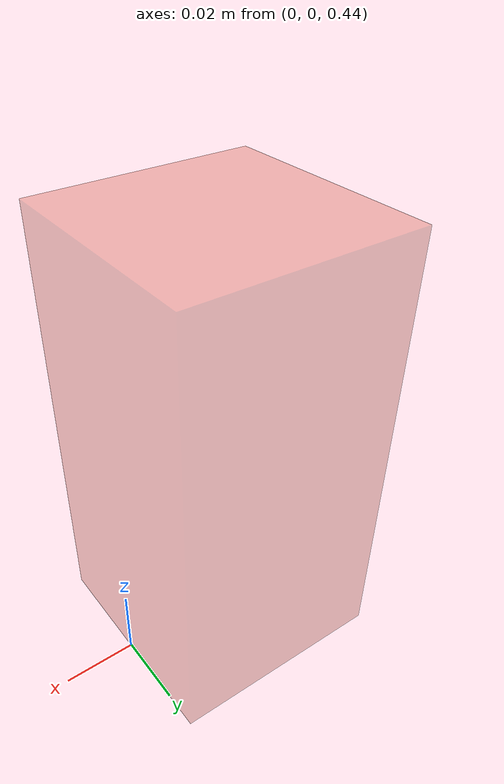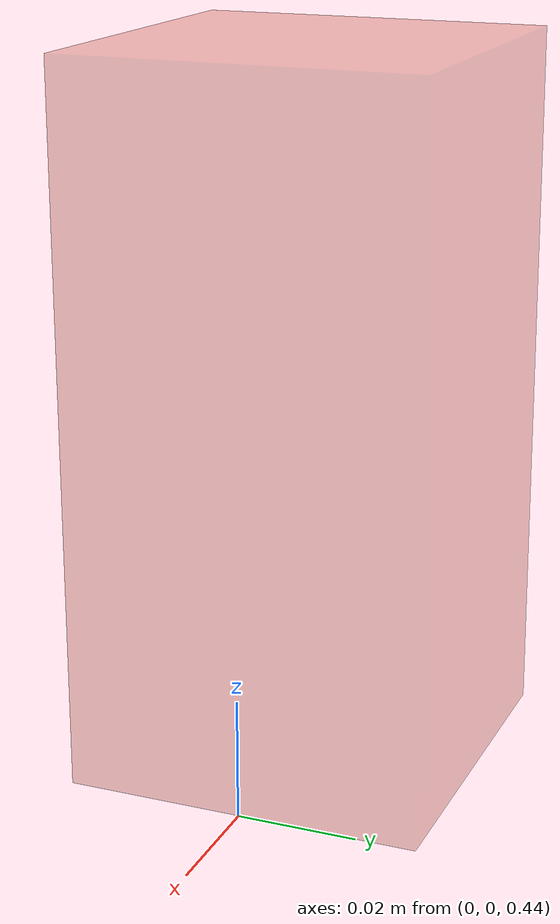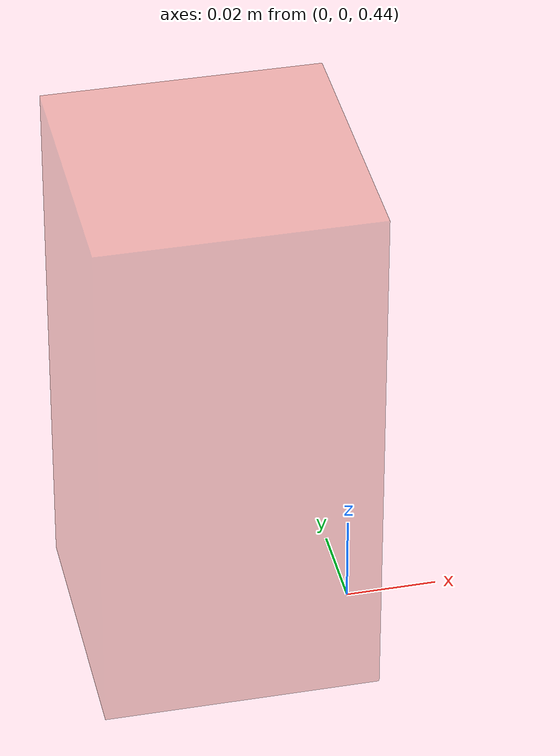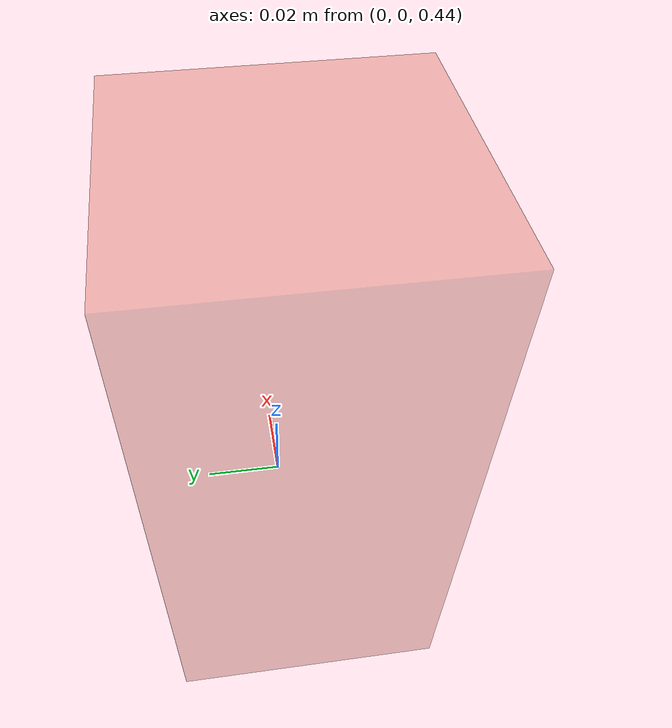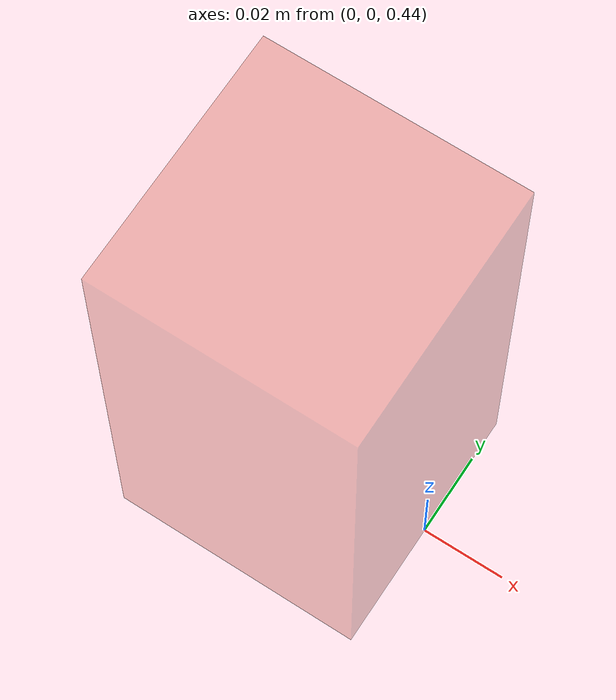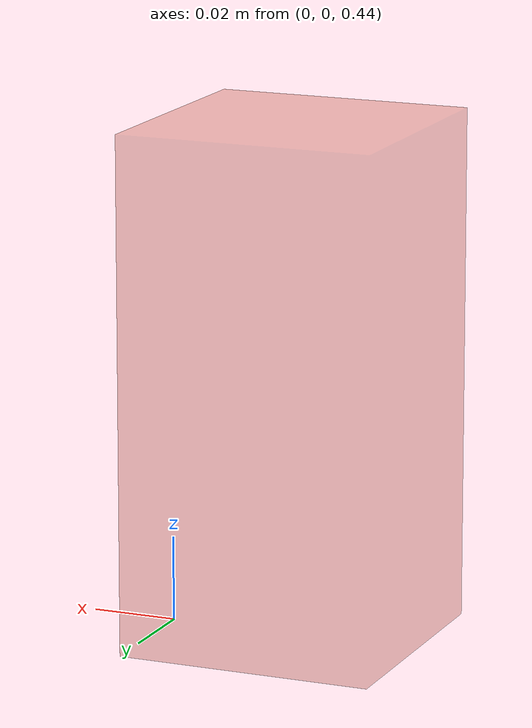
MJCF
<mujoco model="anchor-box">
  <worldbody>
    <body name="anchor_box" pos="-0.03000000000000025 -3.942657917179662e-16 0.5">
      <geom name="fixedbox1" type="box" mass="1" size="0.0300 0.0300 0.0600" contype="0" conaffinity="0" rgba=".8 .2 .1 0.3" friction="1 0.005 0.0001"/>
    </body>
  </worldbody>
  <equality>
     <weld body1='anchor_box' body2='r_joint51_body' solref='0.004 1' relpose='0.03 0 0 1 0 0 0'/>
     <connect body1='r_link1_body' body2='r_link2_body' active='true' solref='0.004 1' anchor='-0.06283185307179587 0 0'/>
     <connect body1='r_link2_body' body2='r_link3_body' active='true' solref='0.004 1' anchor='-0.06283185307179587 0 0'/>
     <connect body1='r_link3_body' body2='r_link4_body' active='true' solref='0.004 1' anchor='-0.06283185307179587 0 0'/>
     <connect body1='r_link4_body' body2='r_link5_body' active='true' solref='0.004 1' anchor='-0.06283185307179587 0 0'/>
     <connect body1='r_link5_body' body2='r_link6_body' active='true' solref='0.004 1' anchor='-0.06283185307179587 0 0'/>
     <connect body1='r_link6_body' body2='r_link7_body' active='true' solref='0.004 1' anchor='-0.06283185307179587 0 0'/>
     <connect body1='r_link7_body' body2='r_link8_body' active='true' solref='0.004 1' anchor='-0.06283185307179587 0 0'/>
     <connect body1='r_link8_body' body2='r_link9_body' active='true' solref='0.004 1' anchor='-0.06283185307179587 0 0'/>
     <connect body1='r_link9_body' body2='r_link10_body' active='true' solref='0.004 1' anchor='-0.06283185307179587 0 0'/>
     <connect body1='r_link10_body' body2='r_link11_body' active='true' solref='0.004 1' anchor='-0.06283185307179587 0 0'/>
     <connect body1='r_link11_body' body2='r_link12_body' active='true' solref='0.004 1' anchor='-0.06283185307179587 0 0'/>
     <connect body1='r_link12_body' body2='r_link13_body' active='true' solref='0.004 1' anchor='-0.06283185307179587 0 0'/>
     <connect body1='r_link13_body' body2='r_link14_body' active='true' solref='0.004 1' anchor='-0.06283185307179587 0 0'/>
     <connect body1='r_link14_body' body2='r_link15_body' active='true' solref='0.004 1' anchor='-0.06283185307179587 0 0'/>
     <connect body1='r_link15_body' body2='r_link16_body' active='true' solref='0.004 1' anchor='-0.06283185307179587 0 0'/>
     <connect body1='r_link16_body' body2='r_link17_body' active='true' solref='0.004 1' anchor='-0.06283185307179587 0 0'/>
     <connect body1='r_link17_body' body2='r_link18_body' active='true' solref='0.004 1' anchor='-0.06283185307179587 0 0'/>
     <connect body1='r_link18_body' body2='r_link19_body' active='true' solref='0.004 1' anchor='-0.06283185307179587 0 0'/>
     <connect body1='r_link19_body' body2='r_link20_body' active='true' solref='0.004 1' anchor='-0.06283185307179587 0 0'/>
     <connect body1='r_link20_body' body2='r_link21_body' active='true' solref='0.004 1' anchor='-0.06283185307179587 0 0'/>
     <connect body1='r_link21_body' body2='r_link22_body' active='true' solref='0.004 1' anchor='-0.06283185307179587 0 0'/>
     <connect body1='r_link22_body' body2='r_link23_body' active='true' solref='0.004 1' anchor='-0.06283185307179587 0 0'/>
     <connect body1='r_link23_body' body2='r_link24_body' active='true' solref='0.004 1' anchor='-0.06283185307179587 0 0'/>
     <connect body1='r_link24_body' body2='r_link25_body' active='true' solref='0.004 1' anchor='-0.06283185307179587 0 0'/>
     <connect body1='r_link25_body' body2='r_link26_body' active='true' solref='0.004 1' anchor='-0.06283185307179587 0 0'/>
     <connect body1='r_link26_body' body2='r_link27_body' active='true' solref='0.004 1' anchor='-0.06283185307179587 0 0'/>
     <connect body1='r_link27_body' body2='r_link28_body' active='true' solref='0.004 1' anchor='-0.06283185307179587 0 0'/>
     <connect body1='r_link28_body' body2='r_link29_body' active='true' solref='0.004 1' anchor='-0.06283185307179587 0 0'/>
     <connect body1='r_link29_body' body2='r_link30_body' active='true' solref='0.004 1' anchor='-0.06283185307179587 0 0'/>
     <connect body1='r_link30_body' body2='r_link31_body' active='true' solref='0.004 1' anchor='-0.06283185307179587 0 0'/>
     <connect body1='r_link31_body' body2='r_link32_body' active='true' solref='0.004 1' anchor='-0.06283185307179587 0 0'/>
     <connect body1='r_link32_body' body2='r_link33_body' active='true' solref='0.004 1' anchor='-0.06283185307179587 0 0'/>
     <connect body1='r_link33_body' body2='r_link34_body' active='true' solref='0.004 1' anchor='-0.06283185307179587 0 0'/>
     <connect body1='r_link34_body' body2='r_link35_body' active='true' solref='0.004 1' anchor='-0.06283185307179587 0 0'/>
     <connect body1='r_link35_body' body2='r_link36_body' active='true' solref='0.004 1' anchor='-0.06283185307179587 0 0'/>
     <connect body1='r_link36_body' body2='r_link37_body' active='true' solref='0.004 1' anchor='-0.06283185307179587 0 0'/>
     <connect body1='r_link37_body' body2='r_link38_body' active='true' solref='0.004 1' anchor='-0.06283185307179587 0 0'/>
     <connect body1='r_link38_body' body2='r_link39_body' active='true' solref='0.004 1' anchor='-0.06283185307179587 0 0'/>
     <connect body1='r_link39_body' body2='r_link40_body' active='true' solref='0.004 1' anchor='-0.06283185307179587 0 0'/>
     <connect body1='r_link40_body' body2='r_link41_body' active='true' solref='0.004 1' anchor='-0.06283185307179587 0 0'/>
     <connect body1='r_link41_body' body2='r_link42_body' active='true' solref='0.004 1' anchor='-0.06283185307179587 0 0'/>
     <connect body1='r_link42_body' body2='r_link43_body' active='true' solref='0.004 1' anchor='-0.06283185307179587 0 0'/>
     <connect body1='r_link43_body' body2='r_link44_body' active='true' solref='0.004 1' anchor='-0.06283185307179587 0 0'/>
     <connect body1='r_link44_body' body2='r_link45_body' active='true' solref='0.004 1' anchor='-0.06283185307179587 0 0'/>
     <connect body1='r_link45_body' body2='r_link46_body' active='true' solref='0.004 1' anchor='-0.06283185307179587 0 0'/>
     <connect body1='r_link46_body' body2='r_link47_body' active='true' solref='0.004 1' anchor='-0.06283185307179587 0 0'/>
     <connect body1='r_link47_body' body2='r_link48_body' active='true' solref='0.004 1' anchor='-0.06283185307179587 0 0'/>
     <connect body1='r_link48_body' body2='r_link49_body' active='true' solref='0.004 1' anchor='-0.06283185307179587 0 0'/>
     <connect body1='r_link49_body' body2='r_link50_body' active='true' solref='0.004 1' anchor='-0.06283185307179587 0 0'/>
     <connect body1='r_link50_body' body2='r_link51_body' active='true' solref='0.004 1' anchor='-0.06283185307179587 0 0'/>
  </equality>
  <contact>
    <exclude body1="r_link1_body" body2="r_link51_body"/>
    <exclude body1="r_link1_body" body2="r_link50_body"/>
    <exclude body1="r_link2_body" body2="r_link51_body"/>
    <exclude body1="r_link1_body" body2="r_link2_body"/>
    <exclude body1="r_link2_body" body2="r_link3_body"/>
    <exclude body1="r_link3_body" body2="r_link4_body"/>
    <exclude body1="r_link4_body" body2="r_link5_body"/>
    <exclude body1="r_link5_body" body2="r_link6_body"/>
    <exclude body1="r_link6_body" body2="r_link7_body"/>
    <exclude body1="r_link7_body" body2="r_link8_body"/>
    <exclude body1="r_link8_body" body2="r_link9_body"/>
    <exclude body1="r_link9_body" body2="r_link10_body"/>
    <exclude body1="r_link10_body" body2="r_link11_body"/>
    <exclude body1="r_link11_body" body2="r_link12_body"/>
    <exclude body1="r_link12_body" body2="r_link13_body"/>
    <exclude body1="r_link13_body" body2="r_link14_body"/>
    <exclude body1="r_link14_body" body2="r_link15_body"/>
    <exclude body1="r_link15_body" body2="r_link16_body"/>
    <exclude body1="r_link16_body" body2="r_link17_body"/>
    <exclude body1="r_link17_body" body2="r_link18_body"/>
    <exclude body1="r_link18_body" body2="r_link19_body"/>
    <exclude body1="r_link19_body" body2="r_link20_body"/>
    <exclude body1="r_link20_body" body2="r_link21_body"/>
    <exclude body1="r_link21_body" body2="r_link22_body"/>
    <exclude body1="r_link22_body" body2="r_link23_body"/>
    <exclude body1="r_link23_body" body2="r_link24_body"/>
    <exclude body1="r_link24_body" body2="r_link25_body"/>
    <exclude body1="r_link25_body" body2="r_link26_body"/>
    <exclude body1="r_link26_body" body2="r_link27_body"/>
    <exclude body1="r_link27_body" body2="r_link28_body"/>
    <exclude body1="r_link28_body" body2="r_link29_body"/>
    <exclude body1="r_link29_body" body2="r_link30_body"/>
    <exclude body1="r_link30_body" body2="r_link31_body"/>
    <exclude body1="r_link31_body" body2="r_link32_body"/>
    <exclude body1="r_link32_body" body2="r_link33_body"/>
    <exclude body1="r_link33_body" body2="r_link34_body"/>
    <exclude body1="r_link34_body" body2="r_link35_body"/>
    <exclude body1="r_link35_body" body2="r_link36_body"/>
    <exclude body1="r_link36_body" body2="r_link37_body"/>
    <exclude body1="r_link37_body" body2="r_link38_body"/>
    <exclude body1="r_link38_body" body2="r_link39_body"/>
    <exclude body1="r_link39_body" body2="r_link40_body"/>
    <exclude body1="r_link40_body" body2="r_link41_body"/>
    <exclude body1="r_link41_body" body2="r_link42_body"/>
    <exclude body1="r_link42_body" body2="r_link43_body"/>
    <exclude body1="r_link43_body" body2="r_link44_body"/>
    <exclude body1="r_link44_body" body2="r_link45_body"/>
    <exclude body1="r_link45_body" body2="r_link46_body"/>
    <exclude body1="r_link46_body" body2="r_link47_body"/>
    <exclude body1="r_link47_body" body2="r_link48_body"/>
    <exclude body1="r_link48_body" body2="r_link49_body"/>
    <exclude body1="r_link49_body" body2="r_link50_body"/>
    <exclude body1="r_link50_body" body2="r_link51_body"/>
  </contact>
</mujoco>
